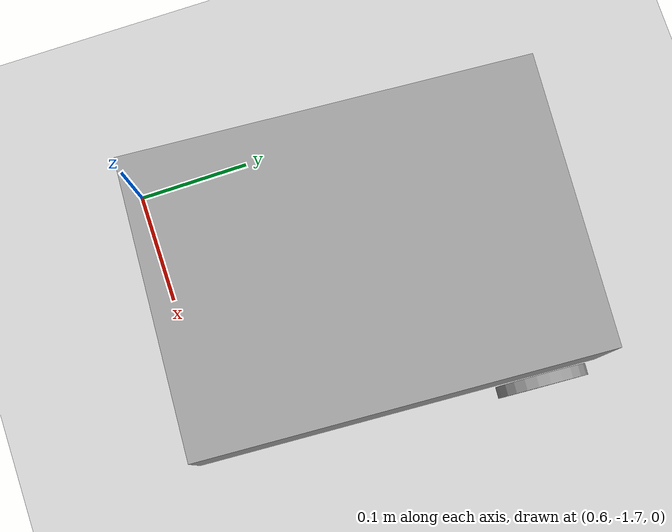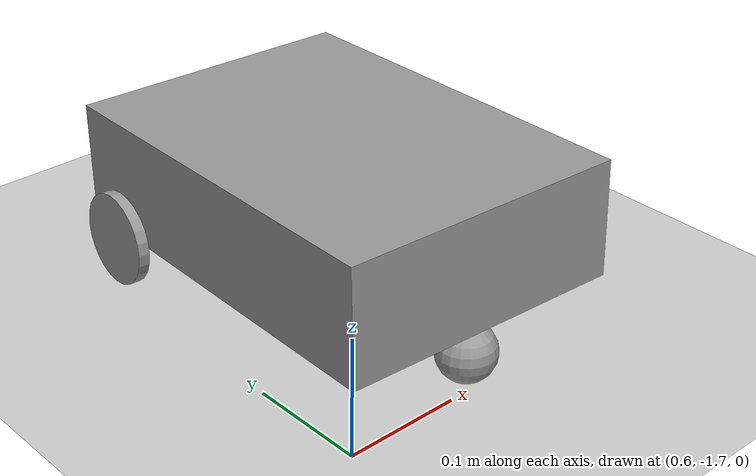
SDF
<sdf version="1.6">
 <world name="default">
  <model name="ground_plane">
   <static>1</static>
   <link name="link">
    <collision name="collision">
     <geometry><plane><normal>0 0 1</normal><size>100 100</size></plane></geometry>
     <surface><friction><ode><mu>100</mu><mu2>50</mu2></ode></friction></surface>
    </collision>
    <visual name="visual">
     <cast_shadows>0</cast_shadows>
     <geometry><plane><normal>0 0 1</normal><size>100 100</size></plane></geometry>
     <material>
      <script><uri>file://media/materials/scripts/gazebo.material</uri><name>Gazebo/Grey</name></script>
     </material>
    </visual>
   </link>
  </model>
  <model name="Robot">
   <link name="link_0_clone">
    <pose>-0.000204 -0.025559 0.046511 0 -0 0</pose>
    <inertial>
     <mass>1</mass>
     <inertia>
      <ixx>0.166667</ixx>
      <ixy>0</ixy>
      <ixz>0</ixz>
      <iyy>0.166667</iyy>
      <iyz>0</iyz>
      <izz>0.166667</izz>
     </inertia>
    </inertial>
    <visual name="visual">
     <geometry><box><size>0.25 0.35 0.1</size></box></geometry>
     <material>
      <lighting>1</lighting>
      <script><uri>file://media/materials/scripts/gazebo.material</uri><name>Gazebo/Grey</name></script>
      <shader type="pixel"><normal_map>__default__</normal_map></shader>
      <ambient>0.3 0.3 0.3 1</ambient>
      <diffuse>0.7 0.7 0.7 1</diffuse>
      <specular>0.01 0.01 0.01 1</specular>
      <emissive>0 0 0 1</emissive>
     </material>
    </visual>
    <collision name="collision">
     <geometry><box><size>0.25 0.35 0.1</size></box></geometry>
     <surface>
      <friction>
       <ode><mu>1</mu><mu2>1</mu2><fdir1>0 0 0</fdir1><slip1>0</slip1><slip2>0</slip2></ode>
       <torsional>
        <coefficient>1</coefficient>
        <patch_radius>0</patch_radius>
        <surface_radius>0</surface_radius>
        <use_patch_radius>1</use_patch_radius>
        <ode><slip>0</slip></ode>
       </torsional>
      </friction>
      <bounce><restitution_coefficient>0</restitution_coefficient><threshold>1e+06</threshold></bounce>
      <contact>
       <collide_without_contact>0</collide_without_contact>
       <collide_without_contact_bitmask>1</collide_without_contact_bitmask>
       <collide_bitmask>1</collide_bitmask>
       <ode>
        <soft_cfm>0</soft_cfm>
        <soft_erp>0.2</soft_erp>
        <kp>1e+13</kp>
        <kd>1</kd>
        <max_vel>0.01</max_vel>
        <min_depth>0</min_depth>
       </ode>
       <bullet>
        <split_impulse>1</split_impulse>
        <split_impulse_penetration_threshold>-0.01</split_impulse_penetration_threshold>
        <soft_cfm>0</soft_cfm>
        <soft_erp>0.2</soft_erp>
        <kp>1e+13</kp>
        <kd>1</kd>
       </bullet>
      </contact>
     </surface>
    </collision>
   </link>
   <link name="link_1_clone">
    <pose>5.7e-05 -0.179848 -0.03217 0 -0 0</pose>
    <inertial>
     <mass>1</mass>
     <inertia><ixx>0.1</ixx><ixy>0</ixy><ixz>0</ixz><iyy>0.1</iyy><iyz>0</iyz><izz>0.1</izz></inertia>
    </inertial>
    <visual name="visual">
     <geometry><sphere><radius>0.025</radius></sphere></geometry>
     <material>
      <lighting>1</lighting>
      <script><uri>file://media/materials/scripts/gazebo.material</uri><name>Gazebo/Grey</name></script>
      <shader type="pixel"><normal_map>__default__</normal_map></shader>
      <ambient>0.3 0.3 0.3 1</ambient>
      <diffuse>0.7 0.7 0.7 1</diffuse>
      <specular>0.01 0.01 0.01 1</specular>
      <emissive>0 0 0 1</emissive>
     </material>
    </visual>
    <collision name="collision">
     <geometry><sphere><radius>0.025</radius></sphere></geometry>
     <surface>
      <friction>
       <ode><mu>1</mu><mu2>1</mu2><fdir1>0 0 0</fdir1><slip1>0</slip1><slip2>0</slip2></ode>
       <torsional>
        <coefficient>1</coefficient>
        <patch_radius>0</patch_radius>
        <surface_radius>0</surface_radius>
        <use_patch_radius>1</use_patch_radius>
        <ode><slip>0</slip></ode>
       </torsional>
      </friction>
      <bounce><restitution_coefficient>0</restitution_coefficient><threshold>1e+06</threshold></bounce>
      <contact>
       <collide_without_contact>0</collide_without_contact>
       <collide_without_contact_bitmask>1</collide_without_contact_bitmask>
       <collide_bitmask>1</collide_bitmask>
       <ode>
        <soft_cfm>0</soft_cfm>
        <soft_erp>0.2</soft_erp>
        <kp>1e+13</kp>
        <kd>1</kd>
        <max_vel>0.01</max_vel>
        <min_depth>0</min_depth>
       </ode>
       <bullet>
        <split_impulse>1</split_impulse>
        <split_impulse_penetration_threshold>-0.01</split_impulse_penetration_threshold>
        <soft_cfm>0</soft_cfm>
        <soft_erp>0.2</soft_erp>
        <kp>1e+13</kp>
        <kd>1</kd>
       </bullet>
      </contact>
     </surface>
    </collision>
   </link>
   <link name="link_2_clone">
    <pose>0.130827 0.100255 -0.00717 -3.14158 1.55152 -3.14158</pose>
    <inertial>
     <mass>1</mass>
     <inertia><ixx>0.145833</ixx><ixy>0</ixy><ixz>0</ixz><iyy>0.145833</iyy><iyz>0</iyz><izz>0.125</izz></inertia>
     <pose>0 0 0 3.14159 1.57079 3.14159</pose>
    </inertial>
    <visual name="visual">
     <geometry><cylinder><radius>0.04</radius><length>0.01</length></cylinder></geometry>
     <material>
      <lighting>1</lighting>
      <script><uri>file://media/materials/scripts/gazebo.material</uri><name>Gazebo/Grey</name></script>
      <shader type="pixel"><normal_map>__default__</normal_map></shader>
      <ambient>0.3 0.3 0.3 1</ambient>
      <diffuse>0.7 0.7 0.7 1</diffuse>
      <specular>0.01 0.01 0.01 1</specular>
      <emissive>0 0 0 1</emissive>
     </material>
    </visual>
    <collision name="collision">
     <geometry><cylinder><radius>0.04</radius><length>0.01</length></cylinder></geometry>
     <surface>
      <friction>
       <ode><mu>1</mu><mu2>1</mu2><fdir1>0 0 0</fdir1><slip1>0</slip1><slip2>0</slip2></ode>
       <torsional>
        <coefficient>1</coefficient>
        <patch_radius>0</patch_radius>
        <surface_radius>0</surface_radius>
        <use_patch_radius>1</use_patch_radius>
        <ode><slip>0</slip></ode>
       </torsional>
      </friction>
      <bounce><restitution_coefficient>0</restitution_coefficient><threshold>1e+06</threshold></bounce>
      <contact>
       <collide_without_contact>0</collide_without_contact>
       <collide_without_contact_bitmask>1</collide_without_contact_bitmask>
       <collide_bitmask>1</collide_bitmask>
       <ode>
        <soft_cfm>0</soft_cfm>
        <soft_erp>0.2</soft_erp>
        <kp>1e+13</kp>
        <kd>1</kd>
        <max_vel>0.01</max_vel>
        <min_depth>0</min_depth>
       </ode>
       <bullet>
        <split_impulse>1</split_impulse>
        <split_impulse_penetration_threshold>-0.01</split_impulse_penetration_threshold>
        <soft_cfm>0</soft_cfm>
        <soft_erp>0.2</soft_erp>
        <kp>1e+13</kp>
        <kd>1</kd>
       </bullet>
      </contact>
     </surface>
    </collision>
   </link>
   <link name="link_2_clone_clone">
    <pose>-0.130712 0.105152 -0.00717 -3.14158 1.55152 -3.14158</pose>
    <inertial>
     <mass>1</mass>
     <inertia><ixx>0.145833</ixx><ixy>0</ixy><ixz>0</ixz><iyy>0.145833</iyy><iyz>0</iyz><izz>0.125</izz></inertia>
     <pose>0 0 0 3.14159 1.57079 3.14159</pose>
    </inertial>
    <visual name="visual">
     <geometry><cylinder><radius>0.04</radius><length>0.01</length></cylinder></geometry>
     <material>
      <lighting>1</lighting>
      <script><uri>file://media/materials/scripts/gazebo.material</uri><name>Gazebo/Grey</name></script>
      <shader type="pixel"><normal_map>__default__</normal_map></shader>
      <ambient>0.3 0.3 0.3 1</ambient>
      <diffuse>0.7 0.7 0.7 1</diffuse>
      <specular>0.01 0.01 0.01 1</specular>
      <emissive>0 0 0 1</emissive>
     </material>
    </visual>
    <collision name="collision">
     <geometry><cylinder><radius>0.04</radius><length>0.01</length></cylinder></geometry>
     <surface>
      <friction>
       <ode><mu>1</mu><mu2>1</mu2><fdir1>0 0 0</fdir1><slip1>0</slip1><slip2>0</slip2></ode>
       <torsional>
        <coefficient>1</coefficient>
        <patch_radius>0</patch_radius>
        <surface_radius>0</surface_radius>
        <use_patch_radius>1</use_patch_radius>
        <ode><slip>0</slip></ode>
       </torsional>
      </friction>
      <bounce><restitution_coefficient>0</restitution_coefficient><threshold>1e+06</threshold></bounce>
      <contact>
       <collide_without_contact>0</collide_without_contact>
       <collide_without_contact_bitmask>1</collide_without_contact_bitmask>
       <collide_bitmask>1</collide_bitmask>
       <ode>
        <soft_cfm>0</soft_cfm>
        <soft_erp>0.2</soft_erp>
        <kp>1e+13</kp>
        <kd>1</kd>
        <max_vel>0.01</max_vel>
        <min_depth>0</min_depth>
       </ode>
       <bullet>
        <split_impulse>1</split_impulse>
        <split_impulse_penetration_threshold>-0.01</split_impulse_penetration_threshold>
        <soft_cfm>0</soft_cfm>
        <soft_erp>0.2</soft_erp>
        <kp>1e+13</kp>
        <kd>1</kd>
       </bullet>
      </contact>
     </surface>
    </collision>
   </link>
   <joint name="link_0_clone_JOINT_0" type="ball">
    <parent>link_0_clone</parent>
    <child>link_1_clone</child>
    <physics>
     <ode><limit><cfm>0</cfm><erp>0.2</erp></limit><suspension><cfm>0</cfm><erp>0.2</erp></suspension></ode>
    </physics>
   </joint>
   <joint name="link_0_clone_JOINT_2" type="revolute">
    <parent>link_0_clone</parent>
    <child>link_2_clone</child>
    <axis>
     <xyz>1 0 0</xyz>
     <use_parent_model_frame>0</use_parent_model_frame>
     <limit>
      <lower>-1.79769e+308</lower>
      <upper>1.79769e+308</upper>
      <effort>-1</effort>
      <velocity>-1</velocity>
     </limit>
     <dynamics>
      <spring_reference>0</spring_reference>
      <spring_stiffness>0</spring_stiffness>
      <damping>0</damping>
     </dynamics>
    </axis>
    <physics>
     <ode><limit><cfm>0</cfm><erp>0.2</erp></limit><suspension><cfm>0</cfm><erp>0.2</erp></suspension></ode>
    </physics>
   </joint>
   <joint name="link_0_clone_JOINT_3" type="revolute">
    <parent>link_0_clone</parent>
    <child>link_2_clone_clone</child>
    <axis>
     <xyz>1 0 0</xyz>
     <use_parent_model_frame>0</use_parent_model_frame>
     <limit>
      <lower>-1.79769e+308</lower>
      <upper>1.79769e+308</upper>
      <effort>-1</effort>
      <velocity>-1</velocity>
     </limit>
     <dynamics>
      <spring_reference>0</spring_reference>
      <spring_stiffness>0</spring_stiffness>
      <damping>0</damping>
     </dynamics>
    </axis>
    <physics>
     <ode><limit><cfm>0</cfm><erp>0.2</erp></limit><suspension><cfm>0</cfm><erp>0.2</erp></suspension></ode>
    </physics>
   </joint>
   <static>0</static>
   <pose>0.738167 -1.50626 0.050795 -0.035344 0.000659 -0.056219</pose>
  </model>
 </world>
</sdf>
